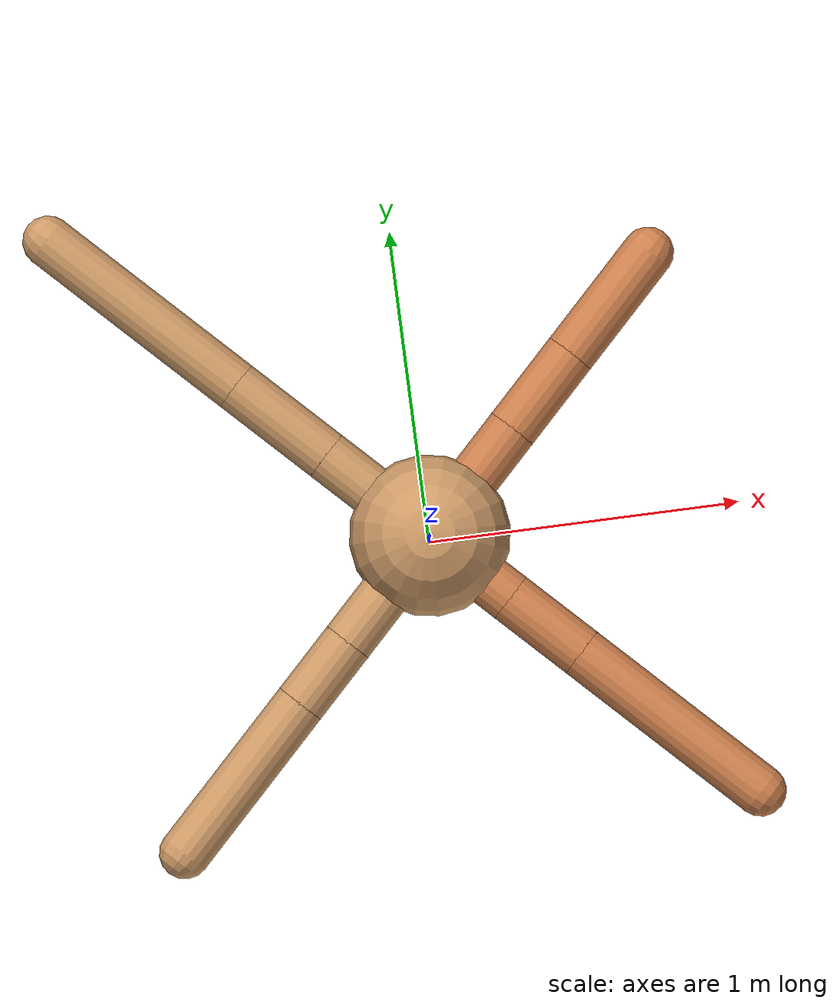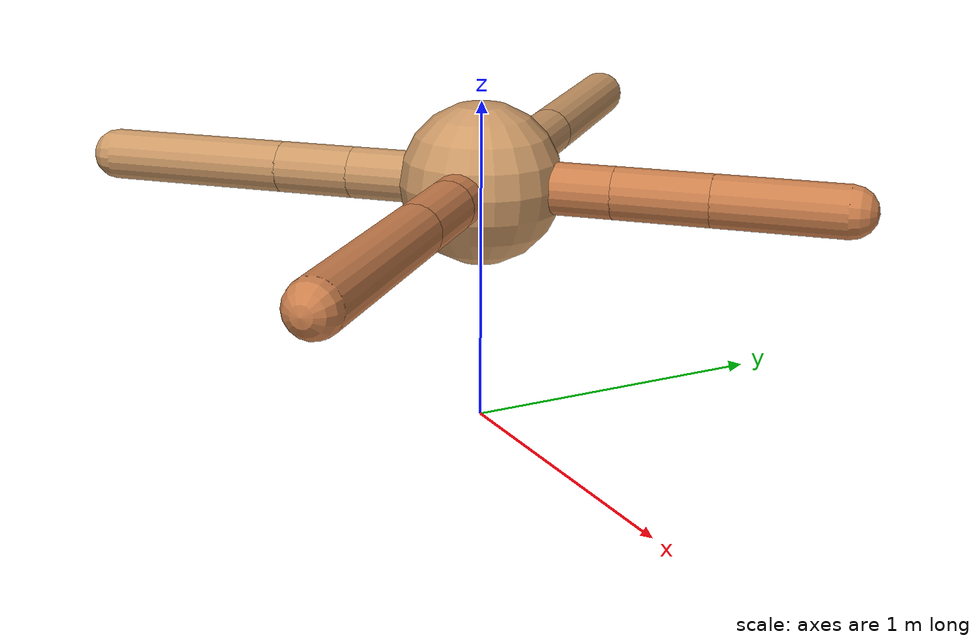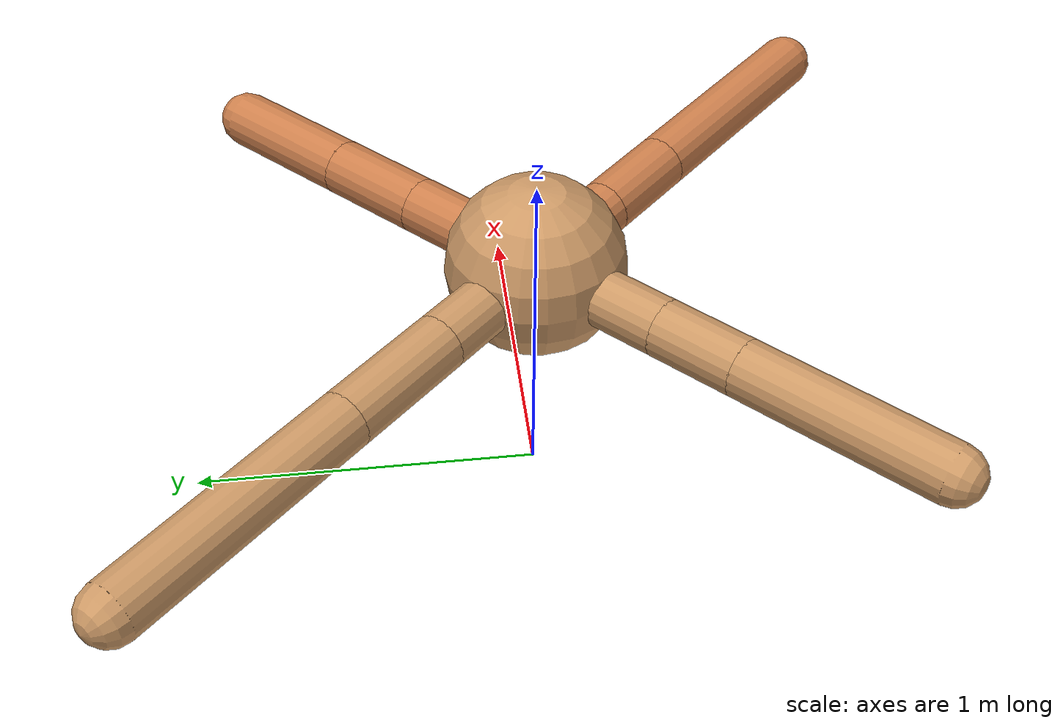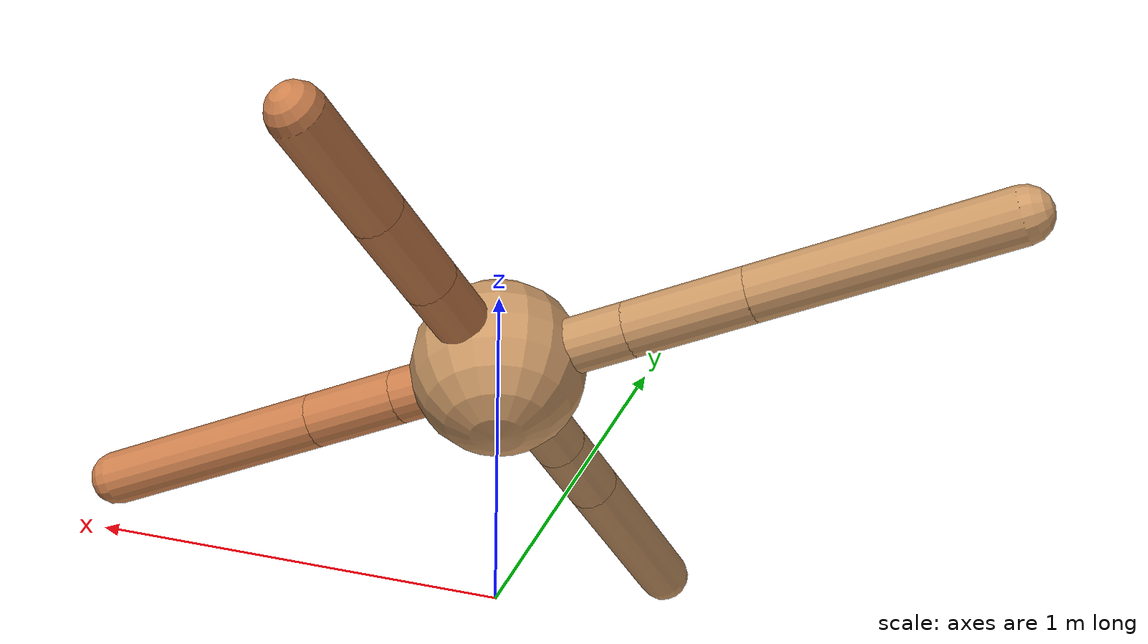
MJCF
<mujoco model="ant">
  <compiler angle="degree" coordinate="local" inertiafromgeom="true" />
  <option integrator="RK4" timestep="0.01" />
  <custom>
    <numeric data="0.0 0.0 0.55 1.0 0.0 0.0 0.0 0.0 1.0 0.0 -1.0 0.0 -1.0 0.0 1.0" name="init_qpos" />
  </custom>
  <default>
    <joint armature="1" damping="1" limited="true" />
    <geom conaffinity="0" condim="3" density="5.0" friction="1.5 0.1 0.1" margin="0.01" rgba="0.8 0.6 0.4 1" />
  </default>
  <worldbody>
    <body name="torso" pos="0 0 0.75">
      <geom name="torso_geom" pos="0 0 0" size="0.25" type="sphere" />

      <body name="front_left_leg" pos="0 0 0">
        <geom fromto="0.0 0.0 0.0 0.2928530515618068 0.2928530515618068 0.0" name="aux_1_geom" size="0.08" type="capsule" rgba=".8 .5 .3 1" />
        <body name="aux_1" pos="0.2928530515618068 0.2928530515618068 0.0">
          <joint axis="0 0 1" name="hip_1" pos="0.0 0.0 0.0" range="-40 40" type="hinge" />
          <geom fromto="0.0 0.0 0.0 0.20712553015158397 0.20712553015158397 0.0" name="left_leg_geom" size="0.08" type="capsule" rgba=".8 .5 .3 1" />
          <body pos="0.20712553015158397 0.20712553015158397 0.0" name="front_left_foot">
            <joint axis="-1 1 0" name="ankle_1" pos="0.0 0.0 0.0" range="30 100" type="hinge" />
            <geom fromto="0.0 0.0 0.0 0.2797846894565817 0.2797846894565817 0.0" name="left_ankle_geom" size="0.08" type="capsule" rgba=".8 .5 .3 1" />
          </body>
        </body>
      </body>
      <body name="front_right_leg" pos="0 0 0">
        <geom fromto="0.0 0.0 0.0 -0.28368392860323927 0.28368392860323927 0.0" name="aux_2_geom" size="0.08" type="capsule" />
        <body name="aux_2" pos="-0.28368392860323927 0.28368392860323927 0.0">
          <joint axis="0 0 1" name="hip_2" pos="0.0 0.0 0.0" range="-40 40" type="hinge" />
          <geom fromto="0.0 0.0 0.0 -0.24851195428833883 0.24851195428833883 0.0" name="right_leg_geom" size="0.08" type="capsule" />
          <body pos="-0.24851195428833883 0.24851195428833883 0.0" name="front_right_foot">
            <joint axis="1 1 0" name="ankle_2" pos="0.0 0.0 0.0" range="-100 -30" type="hinge" />
            <geom fromto="0.0 0.0 0.0 -0.5191863152443225 0.5191863152443225 0.0" name="right_ankle_geom" size="0.08" type="capsule" />
          </body>
        </body>
      </body>
      <body name="left_back_leg" pos="0 0 0">
        <geom fromto="0.0 0.0 0.0 -0.29289934742220297 -0.29289934742220297 0.0" name="aux_3_geom" size="0.08" type="capsule" />
        <body name="aux_3" pos="-0.29289934742220297 -0.29289934742220297 0.0">
          <joint axis="0 0 1" name="hip_3" pos="0.0 0.0 0.0" range="-40 40" type="hinge" />
          <geom fromto="0.0 0.0 0.0 -0.16943051718757604 -0.16943051718757604 0.0" name="back_leg_geom" size="0.08" type="capsule" />
          <body pos="-0.16943051718757604 -0.16943051718757604 0.0" name="left_back_foot">
            <joint axis="-1 1 0" name="ankle_3" pos="0.0 0.0 0.0" range="-100 -30" type="hinge" />
            <geom fromto="0.0 0.0 0.0 -0.4103492427667657 -0.4103492427667657 0.0" name="third_ankle_geom" size="0.08" type="capsule" />
          </body>
        </body>
      </body>
      <body name="right_back_leg" pos="0 0 0">
        <geom fromto="0.0 0.0 0.0 0.22157608010978863 -0.22157608010978863 0.0" name="aux_4_geom" size="0.08" type="capsule" rgba=".8 .5 .3 1" />
        <body name="aux_4" pos="0.22157608010978863 -0.22157608010978863 0.0">
          <joint axis="0 0 1" name="hip_4" pos="0.0 0.0 0.0" range="-40 40" type="hinge" />
          <geom fromto="0.0 0.0 0.0 0.19489436749210381 -0.19489436749210381 0.0" name="rightback_leg_geom" size="0.08" type="capsule" rgba=".8 .5 .3 1" />
          <body pos="0.19489436749210381 -0.19489436749210381 0.0" name="right_back_foot">
            <joint axis="1 1 0" name="ankle_4" pos="0.0 0.0 0.0" range="30 100" type="hinge" />
            <geom fromto="0.0 0.0 0.0 0.4927843359450801 -0.4927843359450801 0.0" name="fourth_ankle_geom" size="0.08" type="capsule" rgba=".8 .5 .3 1" />
          </body>
        </body>
      </body>
    </body>
  </worldbody>
  <actuator>
    <motor ctrllimited="true" ctrlrange="-1.0 1.0" joint="hip_4" gear="150" />
    <motor ctrllimited="true" ctrlrange="-1.0 1.0" joint="ankle_4" gear="150" />
    <motor ctrllimited="true" ctrlrange="-1.0 1.0" joint="hip_1" gear="150" />
    <motor ctrllimited="true" ctrlrange="-1.0 1.0" joint="ankle_1" gear="150" />
    <motor ctrllimited="true" ctrlrange="-1.0 1.0" joint="hip_2" gear="150" />
    <motor ctrllimited="true" ctrlrange="-1.0 1.0" joint="ankle_2" gear="150" />
    <motor ctrllimited="true" ctrlrange="-1.0 1.0" joint="hip_3" gear="150" />
    <motor ctrllimited="true" ctrlrange="-1.0 1.0" joint="ankle_3" gear="150" />
  </actuator>
</mujoco>
